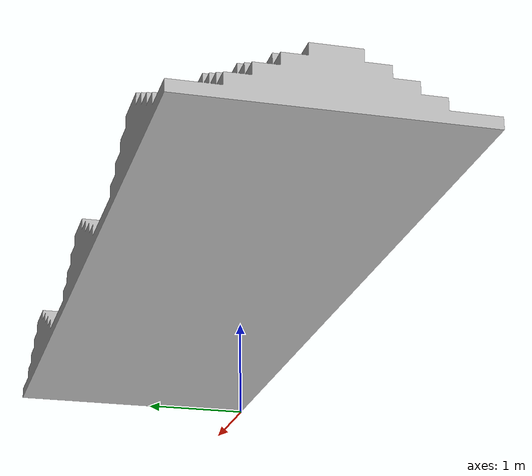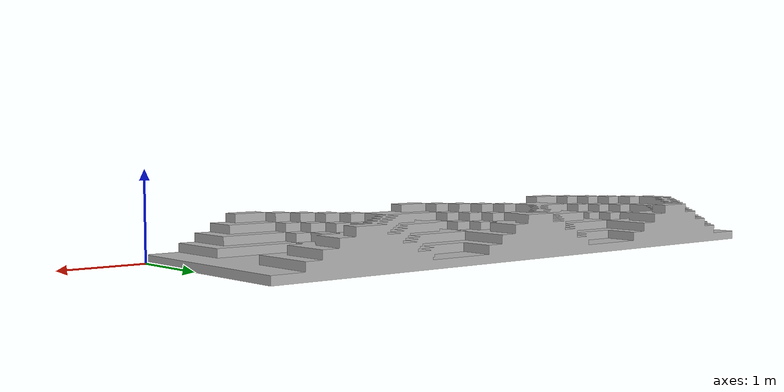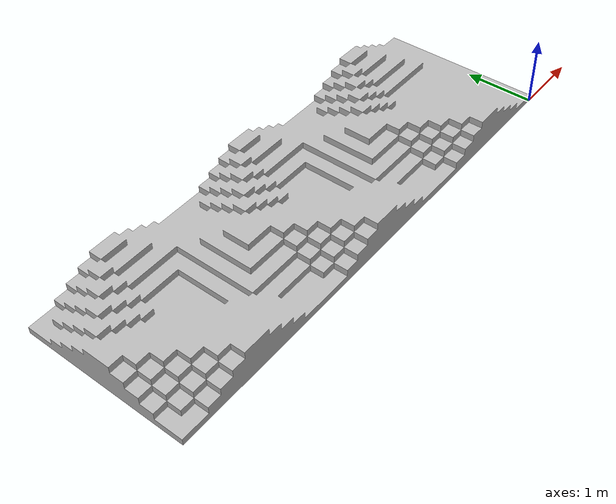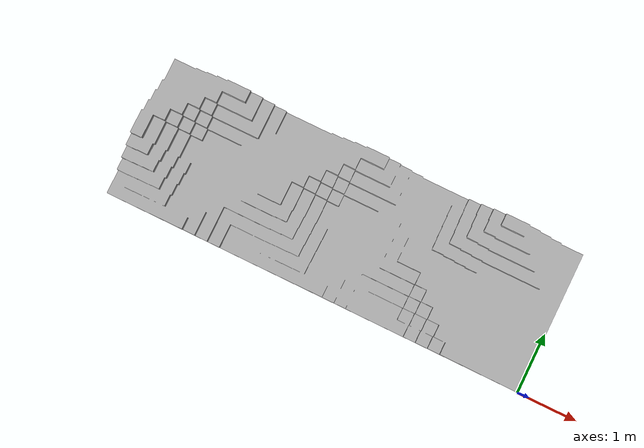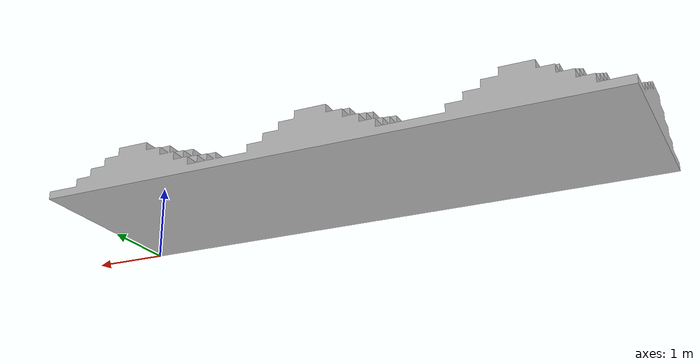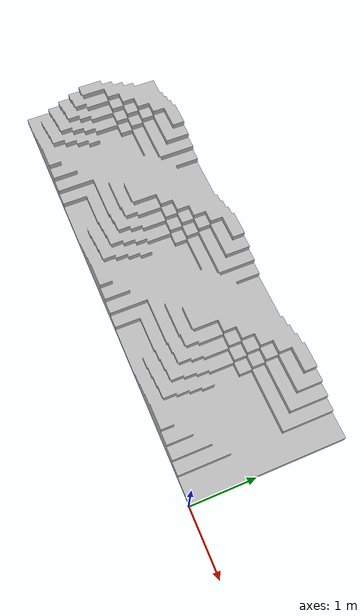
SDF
<?xml version="1.0" ?>
<sdf version="1.6">
  <model name="stepfield3">
    <static>true</static>
    <pose>0 0 0 1.5708 0 0</pose>
    <link name="link">
      <collision name="collision">
        <geometry>
          <mesh>
            <scale>0.025 0.025 0.025</scale>
            <uri>model://stepfield3/astm_step_field3.stl</uri>
          </mesh>
        </geometry>
        <surface>
          <friction>
            <ode>
              <mu>100</mu>
              <mu2>50</mu2>
            </ode>
          </friction>
        </surface>
      </collision>
      <visual name="visual">
        <geometry>
          <mesh>
            <scale>0.025 0.025 0.025</scale>
            <uri>model://stepfield3/astm_step_field3.stl</uri>
          </mesh>
        </geometry>
      </visual>
    </link>
  </model>
</sdf>
